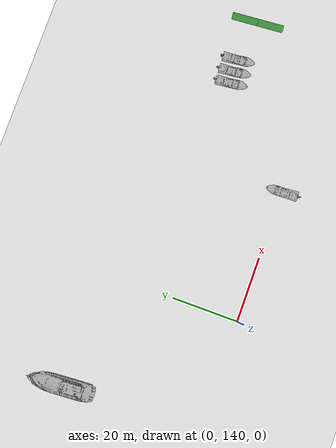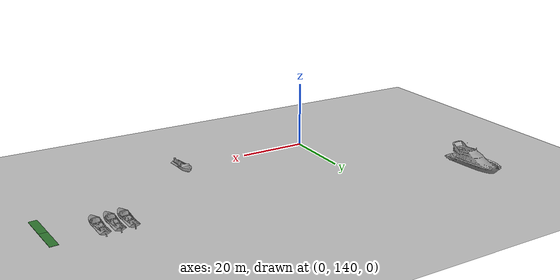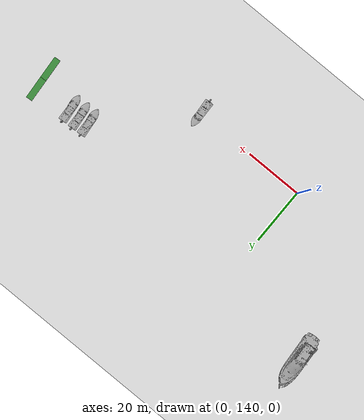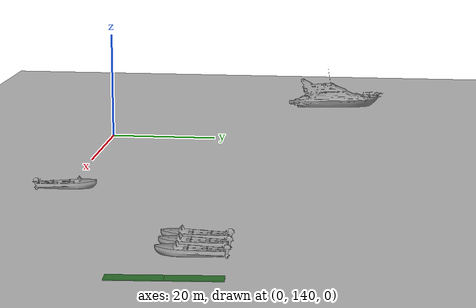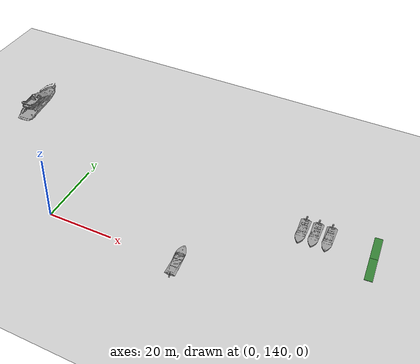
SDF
<sdf version="1.7">
 <world name="default">
  <model name="ground_plane">
   <static>1</static>
   <link name="link">
    <collision name="collision">
     <geometry><plane><normal>0 0 1</normal><size>100 100</size></plane></geometry>
     <surface><friction><ode><mu>100</mu><mu2>50</mu2></ode></friction></surface>
    </collision>
    <visual name="visual">
     <cast_shadows>0</cast_shadows>
     <geometry><plane><normal>0 0 1</normal><size>100 100</size></plane></geometry>
     <material>
      <script><uri>file://media/materials/scripts/gazebo.material</uri><name>Gazebo/Grey</name></script>
     </material>
    </visual>
   </link>
  </model>
  <model name="sailboat_1_0">
   <static>1</static>
   <link name="link">
    <visual name="visual">
     <pose>0 0 1 0 0 -1.507</pose>
     <geometry>
      <mesh>
       <uri>/home/albert/marinero_ws/src/marinero_simulations/models/sailboat_1/meshes/Sailboat.stl</uri>
       <scale>1.8 1.8 1.8</scale>
      </mesh>
     </geometry>
     <material>
      <script><uri>file://media/materials/scripts/gazebo.material</uri><name>Gazebo/Grey</name></script>
     </material>
    </visual>
    <collision name="collision">
     <pose>0 0 1 0 0 -1.507</pose>
     <geometry>
      <mesh>
       <uri>/home/albert/marinero_ws/src/marinero_simulations/models/sailboat_1/meshes/Sailboat.stl</uri>
       <scale>1.8 1.8 1.8</scale>
      </mesh>
     </geometry>
    </collision>
   </link>
   <pose>-21.2995 180.013 0 0 -0 0</pose>
  </model>
  <model name="sailboat_1_clone_1_clone_clone">
   <static>1</static>
   <link name="link">
    <visual name="visual">
     <pose>0 0 1 0 0 -1.507</pose>
     <geometry>
      <mesh>
       <uri>/home/albert/marinero_ws/src/marinero_simulations/models/sailboat_1/meshes/Sailboat.stl</uri>
       <scale>1.8 1.8 1.8</scale>
      </mesh>
     </geometry>
     <material>
      <script><uri>file://media/materials/scripts/gazebo.material</uri><name>Gazebo/Grey</name></script>
     </material>
    </visual>
    <collision name="collision">
     <pose>0 0 1 0 0 -1.507</pose>
     <geometry>
      <mesh>
       <uri>/home/albert/marinero_ws/src/marinero_simulations/models/sailboat_1/meshes/Sailboat.stl</uri>
       <scale>1.8 1.8 1.8</scale>
      </mesh>
     </geometry>
    </collision>
   </link>
   <pose>54.6406 163.676 0 0 0 -3.13388</pose>
  </model>
  <model name="sailboat_1_clone_1_clone_clone_0">
   <static>1</static>
   <link name="link">
    <visual name="visual">
     <pose>0 0 1 0 0 -1.507</pose>
     <geometry>
      <mesh>
       <uri>/home/albert/marinero_ws/src/marinero_simulations/models/sailboat_1/meshes/Sailboat.stl</uri>
       <scale>1.8 1.8 1.8</scale>
      </mesh>
     </geometry>
     <material>
      <script><uri>file://media/materials/scripts/gazebo.material</uri><name>Gazebo/Grey</name></script>
     </material>
    </visual>
    <collision name="collision">
     <pose>0 0 1 0 0 -1.507</pose>
     <geometry>
      <mesh>
       <uri>/home/albert/marinero_ws/src/marinero_simulations/models/sailboat_1/meshes/Sailboat.stl</uri>
       <scale>1.8 1.8 1.8</scale>
      </mesh>
     </geometry>
    </collision>
   </link>
   <pose>-9.56395 160.572 0 0 0 -3.13388</pose>
  </model>
  <model name="speedboat_clone_4_clone">
   <static>1</static>
   <link name="link">
    <visual name="visual">
     <pose>0 0 0.2 0 -0 1.57</pose>
     <geometry>
      <mesh>
       <uri>/home/albert/marinero_ws/src/marinero_simulations/models/speedboat/meshes/Speedboat.stl</uri>
       <scale>2 2 2</scale>
      </mesh>
     </geometry>
     <material>
      <script><uri>file://media/materials/scripts/gazebo.material</uri><name>Gazebo/Grey</name></script>
     </material>
    </visual>
    <collision name="collision">
     <pose>0 0 0.2 0 -0 1.57</pose>
     <geometry>
      <mesh>
       <uri>/home/albert/marinero_ws/src/marinero_simulations/models/sailboat_1/meshes/Speedboat.stl</uri>
       <scale>2 2 2</scale>
      </mesh>
     </geometry>
    </collision>
   </link>
   <pose>40.7131 140.663 0 0 -0 0.057421</pose>
  </model>
  <model name="speedboat_clone_3_clone_11_clone_1_clone_clone_0_clone_1">
   <static>1</static>
   <link name="link">
    <visual name="visual">
     <pose>0 0 0.2 0 -0 1.57</pose>
     <geometry>
      <mesh>
       <uri>/home/albert/marinero_ws/src/marinero_simulations/models/speedboat/meshes/Speedboat.stl</uri>
       <scale>2 2 2</scale>
      </mesh>
     </geometry>
     <material>
      <script><uri>file://media/materials/scripts/gazebo.material</uri><name>Gazebo/Grey</name></script>
     </material>
    </visual>
    <collision name="collision">
     <pose>0 0 0.2 0 -0 1.57</pose>
     <geometry>
      <mesh>
       <uri>/home/albert/marinero_ws/src/marinero_simulations/models/sailboat_1/meshes/Speedboat.stl</uri>
       <scale>2 2 2</scale>
      </mesh>
     </geometry>
    </collision>
   </link>
   <pose>74.4107 165.424 0 0 0 -3.07382</pose>
  </model>
  <model name="speedboat_clone_3_clone_11_clone_1_clone_clone_0_clone_2">
   <static>1</static>
   <link name="link">
    <visual name="visual">
     <pose>0 0 0.2 0 -0 1.57</pose>
     <geometry>
      <mesh>
       <uri>/home/albert/marinero_ws/src/marinero_simulations/models/speedboat/meshes/Speedboat.stl</uri>
       <scale>2 2 2</scale>
      </mesh>
     </geometry>
     <material>
      <script><uri>file://media/materials/scripts/gazebo.material</uri><name>Gazebo/Grey</name></script>
     </material>
    </visual>
    <collision name="collision">
     <pose>0 0 0.2 0 -0 1.57</pose>
     <geometry>
      <mesh>
       <uri>/home/albert/marinero_ws/src/marinero_simulations/models/sailboat_1/meshes/Speedboat.stl</uri>
       <scale>2 2 2</scale>
      </mesh>
     </geometry>
    </collision>
   </link>
   <pose>70.5586 165.313 0 0 0 -3.07382</pose>
  </model>
  <model name="speedboat_clone_3_clone_11_clone_1_clone_clone_0_clone_3">
   <static>1</static>
   <link name="link">
    <visual name="visual">
     <pose>0 0 0.2 0 -0 1.57</pose>
     <geometry>
      <mesh>
       <uri>/home/albert/marinero_ws/src/marinero_simulations/models/speedboat/meshes/Speedboat.stl</uri>
       <scale>2 2 2</scale>
      </mesh>
     </geometry>
     <material>
      <script><uri>file://media/materials/scripts/gazebo.material</uri><name>Gazebo/Grey</name></script>
     </material>
    </visual>
    <collision name="collision">
     <pose>0 0 0.2 0 -0 1.57</pose>
     <geometry>
      <mesh>
       <uri>/home/albert/marinero_ws/src/marinero_simulations/models/sailboat_1/meshes/Speedboat.stl</uri>
       <scale>2 2 2</scale>
      </mesh>
     </geometry>
    </collision>
   </link>
   <pose>66.8859 165.091 0 0 0 -3.07382</pose>
  </model>
  <model name="yacht_1_0_clone_clone_0">
   <static>1</static>
   <link name="link">
    <visual name="visual">
     <pose>0 0 0.35 0 -0 0</pose>
     <geometry>
      <mesh>
       <uri>/home/albert/marinero_ws/src/marinero_simulations/models/yacht_1/meshes/Yacht_1.stl</uri>
       <scale>2.2 2.2 2.2</scale>
      </mesh>
     </geometry>
     <material>
      <script><uri>file://media/materials/scripts/gazebo.material</uri><name>Gazebo/Grey</name></script>
     </material>
    </visual>
    <collision name="collision">
     <pose>0 0 0.35 0 -0 0</pose>
     <geometry>
      <mesh>
       <uri>/home/albert/marinero_ws/src/marinero_simulations/models/yacht_1/meshes/Yacht_1.stl</uri>
       <scale>2.2 2.2 2.2</scale>
      </mesh>
     </geometry>
    </collision>
   </link>
   <pose>-34.6717 181.117 0 0 0 -3.08273</pose>
  </model>
  <model name="grass_plane_SM_4">
   <link name="link">
    <pose>0 0 1.255 0 0 -1.5905</pose>
    <inertial>
     <mass>1</mass>
     <inertia><ixx>1</ixx><ixy>0</ixy><ixz>0</ixz><iyy>1</iyy><iyz>0</iyz><izz>1</izz></inertia>
    </inertial>
    <visual name="visual">
     <cast_shadows>0</cast_shadows>
     <geometry><box><size>8 2.25 0.1</size></box></geometry>
     <material>
      <script>
       <uri>/home/albert/marinero_ws/src/marinero_simulations/models/grass_plane_SM/materials/scripts</uri>
       <uri>/home/albert/marinero_ws/src/marinero_simulations/models/grass_plane_SM/materials/textures/grass.jpg</uri>
       <name>grass_SM/texture</name>
      </script>
      <shader type="pixel"><normal_map>__default__</normal_map></shader>
      <ambient>0.2 0.5 0.2 1</ambient>
      <diffuse>0.2 0.5 0.2 1</diffuse>
      <specular>0.2 0.2 0.2 1</specular>
      <emissive>0 0 0 1</emissive>
     </material>
    </visual>
    <collision name="collision">
     <geometry><box><size>8 2.25 0.1</size></box></geometry>
     <surface>
      <friction>
       <ode><mu>1</mu><mu2>1</mu2><fdir1>0 0 0</fdir1><slip1>0.001</slip1><slip2>1e-05</slip2></ode>
       <torsional>
        <coefficient>1</coefficient>
        <patch_radius>0</patch_radius>
        <surface_radius>0</surface_radius>
        <use_patch_radius>1</use_patch_radius>
        <ode><slip>0</slip></ode>
       </torsional>
      </friction>
      <bounce><restitution_coefficient>0</restitution_coefficient><threshold>1e+06</threshold></bounce>
      <contact>
       <collide_without_contact>0</collide_without_contact>
       <collide_without_contact_bitmask>1</collide_without_contact_bitmask>
       <collide_bitmask>1</collide_bitmask>
       <ode>
        <soft_cfm>0</soft_cfm>
        <soft_erp>0.2</soft_erp>
        <kp>1e+13</kp>
        <kd>1</kd>
        <max_vel>0.01</max_vel>
        <min_depth>0</min_depth>
       </ode>
       <bullet>
        <split_impulse>1</split_impulse>
        <split_impulse_penetration_threshold>-0.01</split_impulse_penetration_threshold>
        <soft_cfm>0</soft_cfm>
        <soft_erp>0.2</soft_erp>
        <kp>1e+13</kp>
        <kd>1</kd>
       </bullet>
      </contact>
     </surface>
    </collision>
   </link>
   <static>1</static>
   <pose>87.0578 168.194 0 0 -0 0.0925</pose>
  </model>
  <model name="grass_plane_SM_4_clone">
   <link name="link">
    <pose>0 0 1.255 0 0 -1.5905</pose>
    <inertial>
     <mass>1</mass>
     <inertia><ixx>1</ixx><ixy>0</ixy><ixz>0</ixz><iyy>1</iyy><iyz>0</iyz><izz>1</izz></inertia>
    </inertial>
    <visual name="visual">
     <cast_shadows>0</cast_shadows>
     <geometry><box><size>8 2.25 0.1</size></box></geometry>
     <material>
      <script>
       <uri>/home/albert/marinero_ws/src/marinero_simulations/models/grass_plane_SM/materials/scripts</uri>
       <uri>/home/albert/marinero_ws/src/marinero_simulations/models/grass_plane_SM/materials/textures/grass.jpg</uri>
       <name>grass_SM/texture</name>
      </script>
      <shader type="pixel"><normal_map>__default__</normal_map></shader>
      <ambient>0.2 0.5 0.2 1</ambient>
      <diffuse>0.2 0.5 0.2 1</diffuse>
      <specular>0.2 0.2 0.2 1</specular>
      <emissive>0 0 0 1</emissive>
     </material>
    </visual>
    <collision name="collision">
     <geometry><box><size>8 2.25 0.1</size></box></geometry>
     <surface>
      <friction>
       <ode><mu>1</mu><mu2>1</mu2><fdir1>0 0 0</fdir1><slip1>0.001</slip1><slip2>1e-05</slip2></ode>
       <torsional>
        <coefficient>1</coefficient>
        <patch_radius>0</patch_radius>
        <surface_radius>0</surface_radius>
        <use_patch_radius>1</use_patch_radius>
        <ode><slip>0</slip></ode>
       </torsional>
      </friction>
      <bounce><restitution_coefficient>0</restitution_coefficient><threshold>1e+06</threshold></bounce>
      <contact>
       <collide_without_contact>0</collide_without_contact>
       <collide_without_contact_bitmask>1</collide_without_contact_bitmask>
       <collide_bitmask>1</collide_bitmask>
       <ode>
        <soft_cfm>0</soft_cfm>
        <soft_erp>0.2</soft_erp>
        <kp>1e+13</kp>
        <kd>1</kd>
        <max_vel>0.01</max_vel>
        <min_depth>0</min_depth>
       </ode>
       <bullet>
        <split_impulse>1</split_impulse>
        <split_impulse_penetration_threshold>-0.01</split_impulse_penetration_threshold>
        <soft_cfm>0</soft_cfm>
        <soft_erp>0.2</soft_erp>
        <kp>1e+13</kp>
        <kd>1</kd>
       </bullet>
      </contact>
     </surface>
    </collision>
   </link>
   <static>1</static>
   <pose>87.6378 160.241 0 0 -0 0.0925</pose>
  </model>
 </world>
</sdf>
